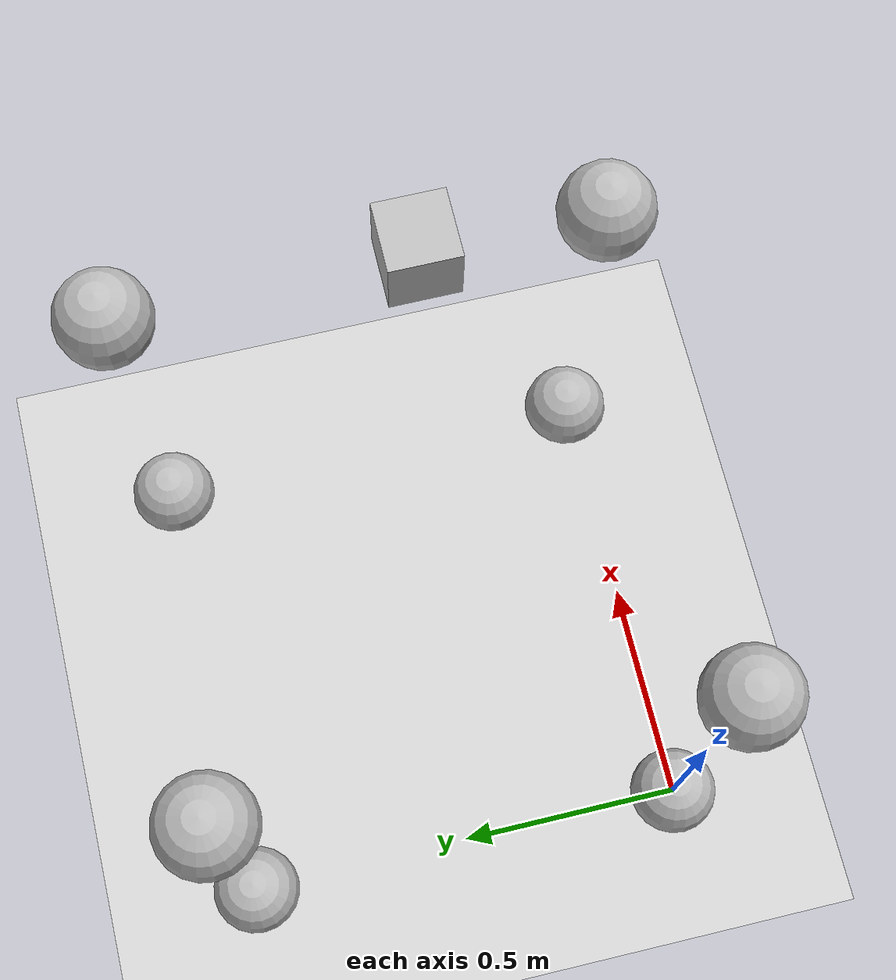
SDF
<?xml version="1.0" ?>
<sdf version="1.5">
  <world name="default">
    <!-- A global light source -->
    <include>
      <uri>model://sun</uri>
    </include>
    <!-- A ground plane -->
    <include>
      <uri>model://ground_plane</uri>
    </include>
		<!-- UWB tags -->
    <include>
			<name>uwb_tag_0</name>
      <uri>models//uwb_anchor</uri>
			<pose>0 0 0 0 0 0</pose>
    </include>
    <include>
			<name>uwb_tag_1</name>
      <uri>models//uwb_anchor</uri>
			<pose>0 0 1 0 0 0</pose>
    </include>
    <include>
			<name>uwb_tag_2</name>
      <uri>models//uwb_anchor</uri>
			<pose>0 1 0 0 0 0</pose>
    </include>
    <include>
			<name>uwb_tag_3</name>
      <uri>models//uwb_anchor</uri>
			<pose>0 1 1 0 0 0</pose>
    </include>
    <include>
			<name>uwb_tag_4</name>
      <uri>models//uwb_anchor</uri>
			<pose>1 0 0 0 0 0</pose>
    </include>
    <include>
			<name>uwb_tag_5</name>
      <uri>models//uwb_anchor</uri>
			<pose>1 0 1 0 0 0</pose>
    </include>
    <include>
			<name>uwb_tag_6</name>
      <uri>models//uwb_anchor</uri>
			<pose>1 1 0 0 0 0</pose>
    </include>
    <include>
			<name>uwb_tag_7</name>
      <uri>models//uwb_anchor</uri>
			<pose>1 1 1 0 0 0</pose>
    </include>

    <!-- UWB sensor -->
    <include>
			<name>uwb_sensor_0</name>
      <uri>models//uwb_sensor</uri>
			<pose>0.5 0.5 2 0 0 0</pose>
    </include>

		<!-- Physics -->
    <physics name='default_physics' default='0' type='ode'>
      <gravity>0 0 -9.8066</gravity>
      <ode>
        <solver>
          <type>quick</type>
          <iters>10</iters>
          <sor>1.3</sor>
          <use_dynamic_moi_rescaling>0</use_dynamic_moi_rescaling>
        </solver>
        <constraints>
          <cfm>0</cfm>
          <erp>0.2</erp>
          <contact_max_correcting_vel>100</contact_max_correcting_vel>
          <contact_surface_layer>0.001</contact_surface_layer>
        </constraints>
      </ode>
      <max_step_size>0.004</max_step_size>
      <real_time_factor>1</real_time_factor>
      <real_time_update_rate>250</real_time_update_rate>
      <magnetic_field>6.0e-6 2.3e-5 -4.2e-5</magnetic_field>
    </physics>
  </world>
</sdf>

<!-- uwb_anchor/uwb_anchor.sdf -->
<sdf version='1.6'>
  <model name='uwb_anchor'>
    <static>1</static>
		<pose>0 0 0 0 0 0</pose>
		<link name="uwb_anchor_head">
			<visual name='uwb_anchor_head_visual'>
			<pose>0 0 0 0 0 0</pose>
				<geometry>
					<sphere>
						<radius>0.1 0.1 0.1</radius>
					</sphere>
				</geometry>
			</visual>
		</link>
		<plugin name="gazebo_ros_uwb" filename="libgazebo_ros_uwb.so">
			<link_name>uwb_anchor_head</link_name>
			<update_rate>5</update_rate>
		</plugin>
  </model>
</sdf>

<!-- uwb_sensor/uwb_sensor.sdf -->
<sdf version='1.6'>
  <model name='uwb_sensor'>
		<pose>0 0 0 0 0 0</pose>
		<link name="uwb_sensor_head">
			<visual name='uwb_sensor_head_visual'>
			  <pose>0 0 0 0 0 0</pose>
				<geometry>
					<box>
						<size>0.1 0.1 0.1</size>
					</box>
				</geometry>
			</visual>
      <collision name="uwb_sensor_head_collision">
        <pose>0 0 0 0 0 0</pose>
				<geometry>
					<box>
						<size>0.1 0.1 0.1</size>
					</box>
				</geometry>
      </collision>
		</link>
		<plugin name="uwb_plugin" filename="libgazebo_ros_uwb.so">
      <is_sensor/>
      <anchor_id>0</anchor_id>
			<link_name>uwb_sensor_head</link_name>
			<update_rate>1</update_rate>
		</plugin>

		<plugin name="gazebo_ros_p3d" filename="libgazebo_ros_p3d.so">
        <ros>
          <namespace>/uwb_sensor_true</namespace>
        </ros>
        <body_name>uwb_sensor_head</body_name>
        <frame_name>world</frame_name>
        <update_rate>1</update_rate>
        <xyz_offset>0 0 0</xyz_offset>
        <rpy_offset>0 0 0</rpy_offset>
        <gaussian_noise>0</gaussian_noise>
    </plugin>

  </model>
</sdf>
